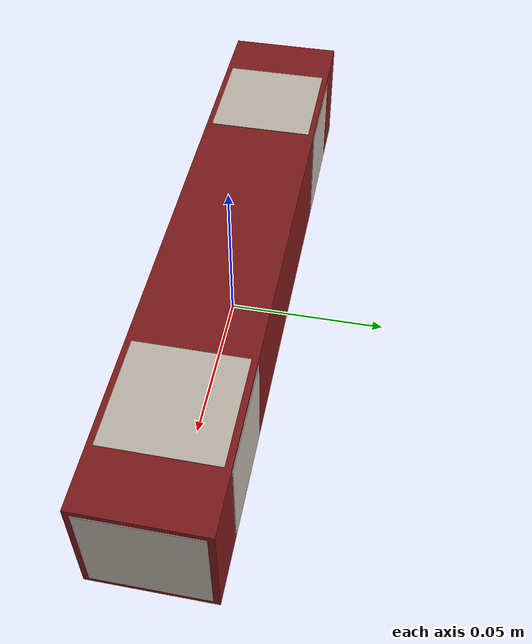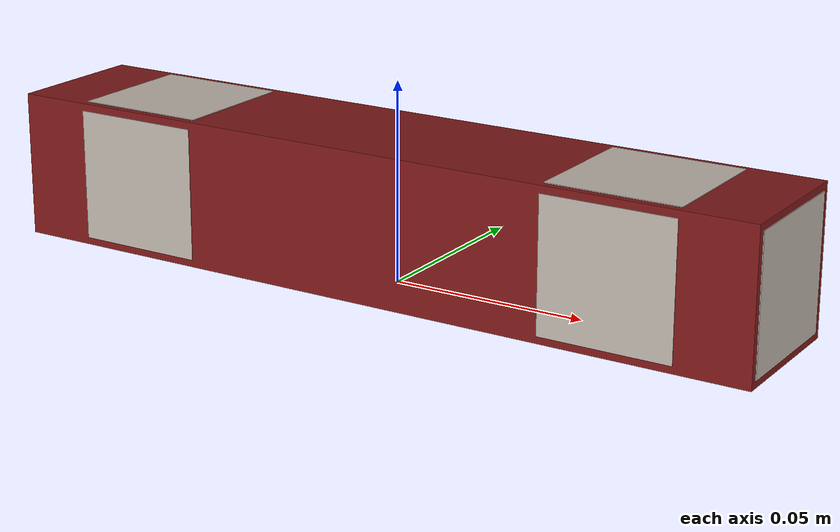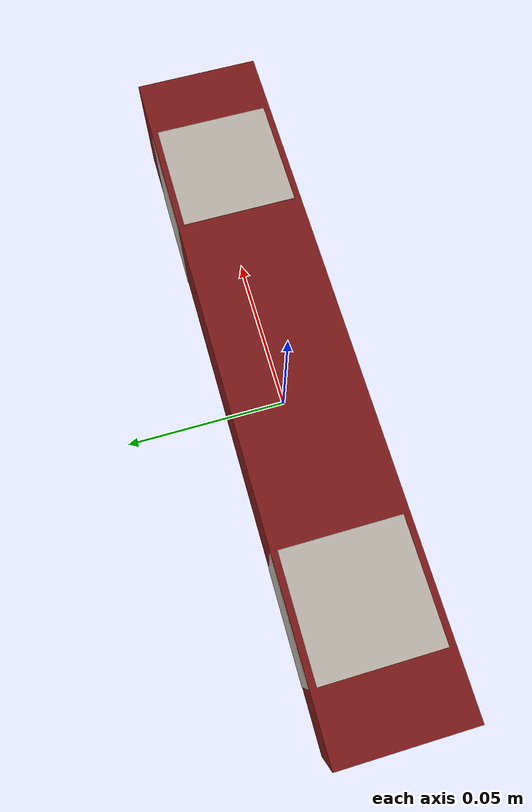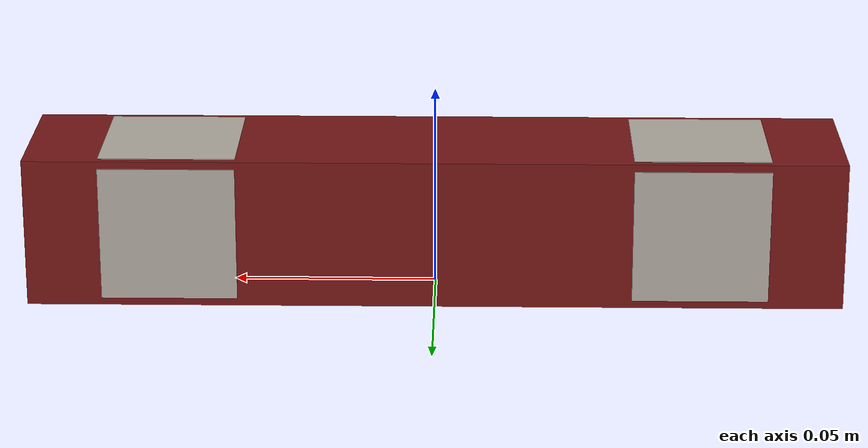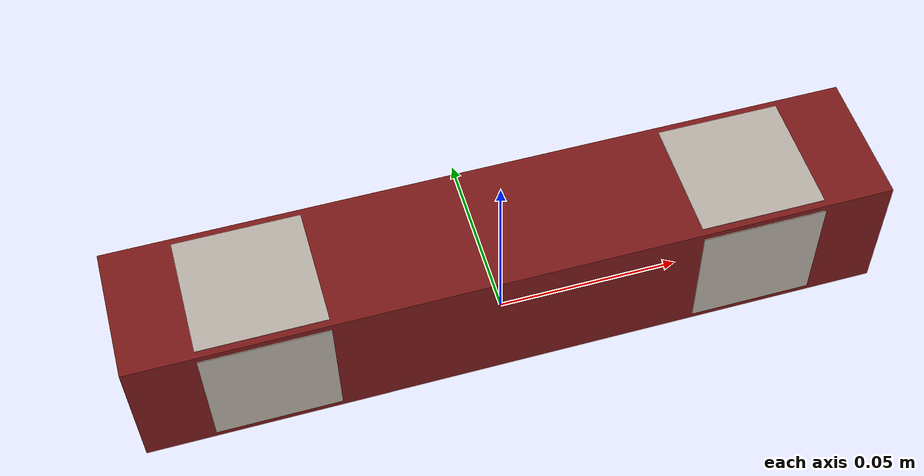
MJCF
<mujoco model="peg_v1_3">
  <compiler angle="radian" autolimits="true" inertiafromgeom="true" meshdir="../board_1" texturedir="tags" />
  <default>
    <default class="peg_v1_3">
      <default class="vis">
        <geom contype="0" conaffinity="0" group="2" density="0" material="peg_v1_3_mat" />
      </default>
      <default class="col">
        <geom contype="1" conaffinity="1" group="3" priority="0" friction="0.3 0.02 0.001" solref="0.002 1" solimp="0.995 0.995 0.0001" condim="6" rgba="0.5 0.1 0.1 0.5" />
      </default>
    </default>
  </default>
  <asset>
    <material name="peg_v1_3_mat" rgba="0.5 0.1 0.1 1.0" />
    <texture name="peg_3_1_tag_22_tex" type="2d" file="tag_22.png" />
    <material name="peg_3_1_tag_22_mat" texture="peg_3_1_tag_22_tex" rgba="1 1 1 1" specular="0" shininess="0" reflectance="0" emission="0" />
    <mesh name="peg_3_1_tag_22_mesh" vertex="-0.0166667 0.0166667 0 0.0166667 0.0166667 0 0.0166667 -0.0166667 0 -0.0166667 -0.0166667 0 -0.0166667 0.0166667 -0.0005 0.0166667 0.0166667 -0.0005 0.0166667 -0.0166667 -0.0005 -0.0166667 -0.0166667 -0.0005" texcoord="0 0 1 0 1 1 0 1 0 0 1 0 1 1 0 1" face="0 2 1 0 3 2 7 5 6 7 4 5 0 5 4 0 1 5 1 6 5 1 2 6 2 7 6 2 3 7 3 4 7 3 0 4" />
    <texture name="peg_3_1_tag_23_tex" type="2d" file="tag_23.png" />
    <material name="peg_3_1_tag_23_mat" texture="peg_3_1_tag_23_tex" rgba="1 1 1 1" specular="0" shininess="0" reflectance="0" emission="0" />
    <mesh name="peg_3_1_tag_23_mesh" vertex="-0.0166667 0.0166667 0 0.0166667 0.0166667 0 0.0166667 -0.0166667 0 -0.0166667 -0.0166667 0 -0.0166667 0.0166667 -0.0005 0.0166667 0.0166667 -0.0005 0.0166667 -0.0166667 -0.0005 -0.0166667 -0.0166667 -0.0005" texcoord="0 0 1 0 1 1 0 1 0 0 1 0 1 1 0 1" face="0 2 1 0 3 2 7 5 6 7 4 5 0 5 4 0 1 5 1 6 5 1 2 6 2 7 6 2 3 7 3 4 7 3 0 4" />
    <texture name="peg_3_1_tag_24_tex" type="2d" file="tag_24.png" />
    <material name="peg_3_1_tag_24_mat" texture="peg_3_1_tag_24_tex" rgba="1 1 1 1" specular="0" shininess="0" reflectance="0" emission="0" />
    <mesh name="peg_3_1_tag_24_mesh" vertex="-0.0166667 0.0166667 0 0.0166667 0.0166667 0 0.0166667 -0.0166667 0 -0.0166667 -0.0166667 0 -0.0166667 0.0166667 -0.0005 0.0166667 0.0166667 -0.0005 0.0166667 -0.0166667 -0.0005 -0.0166667 -0.0166667 -0.0005" texcoord="0 0 1 0 1 1 0 1 0 0 1 0 1 1 0 1" face="0 2 1 0 3 2 7 5 6 7 4 5 0 5 4 0 1 5 1 6 5 1 2 6 2 7 6 2 3 7 3 4 7 3 0 4" />
    <texture name="peg_3_1_tag_25_tex" type="2d" file="tag_25.png" />
    <material name="peg_3_1_tag_25_mat" texture="peg_3_1_tag_25_tex" rgba="1 1 1 1" specular="0" shininess="0" reflectance="0" emission="0" />
    <mesh name="peg_3_1_tag_25_mesh" vertex="-0.0166667 0.0166667 0 0.0166667 0.0166667 0 0.0166667 -0.0166667 0 -0.0166667 -0.0166667 0 -0.0166667 0.0166667 -0.0005 0.0166667 0.0166667 -0.0005 0.0166667 -0.0166667 -0.0005 -0.0166667 -0.0166667 -0.0005" texcoord="0 0 1 0 1 1 0 1 0 0 1 0 1 1 0 1" face="0 2 1 0 3 2 7 5 6 7 4 5 0 5 4 0 1 5 1 6 5 1 2 6 2 7 6 2 3 7 3 4 7 3 0 4" />
    <texture name="peg_3_1_tag_26_tex" type="2d" file="tag_26.png" />
    <material name="peg_3_1_tag_26_mat" texture="peg_3_1_tag_26_tex" rgba="1 1 1 1" specular="0" shininess="0" reflectance="0" emission="0" />
    <mesh name="peg_3_1_tag_26_mesh" vertex="-0.0166667 0.0166667 0 0.0166667 0.0166667 0 0.0166667 -0.0166667 0 -0.0166667 -0.0166667 0 -0.0166667 0.0166667 -0.0005 0.0166667 0.0166667 -0.0005 0.0166667 -0.0166667 -0.0005 -0.0166667 -0.0166667 -0.0005" texcoord="0 0 1 0 1 1 0 1 0 0 1 0 1 1 0 1" face="0 2 1 0 3 2 7 5 6 7 4 5 0 5 4 0 1 5 1 6 5 1 2 6 2 7 6 2 3 7 3 4 7 3 0 4" />
    <texture name="peg_3_1_tag_27_tex" type="2d" file="tag_27.png" />
    <material name="peg_3_1_tag_27_mat" texture="peg_3_1_tag_27_tex" rgba="1 1 1 1" specular="0" shininess="0" reflectance="0" emission="0" />
    <mesh name="peg_3_1_tag_27_mesh" vertex="-0.0166667 0.0166667 0 0.0166667 0.0166667 0 0.0166667 -0.0166667 0 -0.0166667 -0.0166667 0 -0.0166667 0.0166667 -0.0005 0.0166667 0.0166667 -0.0005 0.0166667 -0.0166667 -0.0005 -0.0166667 -0.0166667 -0.0005" texcoord="0 0 1 0 1 1 0 1 0 0 1 0 1 1 0 1" face="0 2 1 0 3 2 7 5 6 7 4 5 0 5 4 0 1 5 1 6 5 1 2 6 2 7 6 2 3 7 3 4 7 3 0 4" />
    <texture name="peg_3_1_tag_28_tex" type="2d" file="tag_28.png" />
    <material name="peg_3_1_tag_28_mat" texture="peg_3_1_tag_28_tex" rgba="1 1 1 1" specular="0" shininess="0" reflectance="0" emission="0" />
    <mesh name="peg_3_1_tag_28_mesh" vertex="-0.0166667 0.0166667 0 0.0166667 0.0166667 0 0.0166667 -0.0166667 0 -0.0166667 -0.0166667 0 -0.0166667 0.0166667 -0.0005 0.0166667 0.0166667 -0.0005 0.0166667 -0.0166667 -0.0005 -0.0166667 -0.0166667 -0.0005" texcoord="0 0 1 0 1 1 0 1 0 0 1 0 1 1 0 1" face="0 2 1 0 3 2 7 5 6 7 4 5 0 5 4 0 1 5 1 6 5 1 2 6 2 7 6 2 3 7 3 4 7 3 0 4" />
    <texture name="peg_3_1_tag_29_tex" type="2d" file="tag_29.png" />
    <material name="peg_3_1_tag_29_mat" texture="peg_3_1_tag_29_tex" rgba="1 1 1 1" specular="0" shininess="0" reflectance="0" emission="0" />
    <mesh name="peg_3_1_tag_29_mesh" vertex="-0.0166667 0.0166667 0 0.0166667 0.0166667 0 0.0166667 -0.0166667 0 -0.0166667 -0.0166667 0 -0.0166667 0.0166667 -0.0005 0.0166667 0.0166667 -0.0005 0.0166667 -0.0166667 -0.0005 -0.0166667 -0.0166667 -0.0005" texcoord="0 0 1 0 1 1 0 1 0 0 1 0 1 1 0 1" face="0 2 1 0 3 2 7 5 6 7 4 5 0 5 4 0 1 5 1 6 5 1 2 6 2 7 6 2 3 7 3 4 7 3 0 4" />
  </asset>
  <worldbody>
    <body name="peg_v1_3" pos="0 0 0" childclass="peg_v1_3">
      <freejoint name="peg_v1_3_joint" />
      <geom name="peg_v1_3_vis_main" type="box" class="vis" pos="0.000000 0.000000 0.018500" size="0.100000 0.018500 0.018500" />
      <geom name="peg_v1_3_col_main" type="box" class="col" pos="0.000000 0.000000 0.018500" size="0.100000 0.018500 0.018500" />
      <geom name="peg_3_1_tag_22" type="mesh" mesh="peg_3_1_tag_22_mesh" material="peg_3_1_tag_22_mat" pos="-0.065 0 0.0372" quat="1 0 0 0" contype="0" conaffinity="0" group="2" density="0" />
      <geom name="peg_3_1_tag_23" type="mesh" mesh="peg_3_1_tag_23_mesh" material="peg_3_1_tag_23_mat" pos="0.065 0 0.0372" quat="1 0 0 0" contype="0" conaffinity="0" group="2" density="0" />
      <geom name="peg_3_1_tag_24" type="mesh" mesh="peg_3_1_tag_24_mesh" material="peg_3_1_tag_24_mat" pos="-0.1002 0 0.0185" quat="0.5 0.5 -0.5 -0.5" contype="0" conaffinity="0" group="2" density="0" />
      <geom name="peg_3_1_tag_25" type="mesh" mesh="peg_3_1_tag_25_mesh" material="peg_3_1_tag_25_mat" pos="0.1002 0 0.0185" quat="0.5 0.5 0.5 0.5" contype="0" conaffinity="0" group="2" density="0" />
      <geom name="peg_3_1_tag_26" type="mesh" mesh="peg_3_1_tag_26_mesh" material="peg_3_1_tag_26_mat" pos="-0.065 -0.0187 0.0185" quat="0.707107 0.707107 0 0" contype="0" conaffinity="0" group="2" density="0" />
      <geom name="peg_3_1_tag_27" type="mesh" mesh="peg_3_1_tag_27_mesh" material="peg_3_1_tag_27_mat" pos="0.065 -0.0187 0.0185" quat="0.707107 0.707107 0 0" contype="0" conaffinity="0" group="2" density="0" />
      <geom name="peg_3_1_tag_28" type="mesh" mesh="peg_3_1_tag_28_mesh" material="peg_3_1_tag_28_mat" pos="-0.065 0.0187 0.0185" quat="0 0 0.707107 0.707107" contype="0" conaffinity="0" group="2" density="0" />
      <geom name="peg_3_1_tag_29" type="mesh" mesh="peg_3_1_tag_29_mesh" material="peg_3_1_tag_29_mat" pos="0.065 0.0187 0.0185" quat="0 0 0.707107 0.707107" contype="0" conaffinity="0" group="2" density="0" />
    </body>
  </worldbody>
</mujoco>
